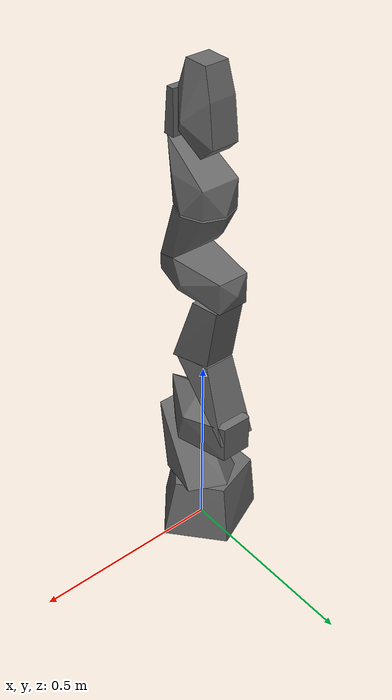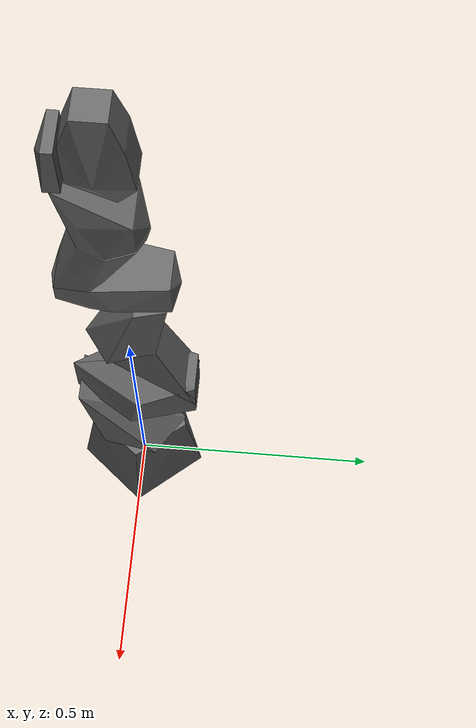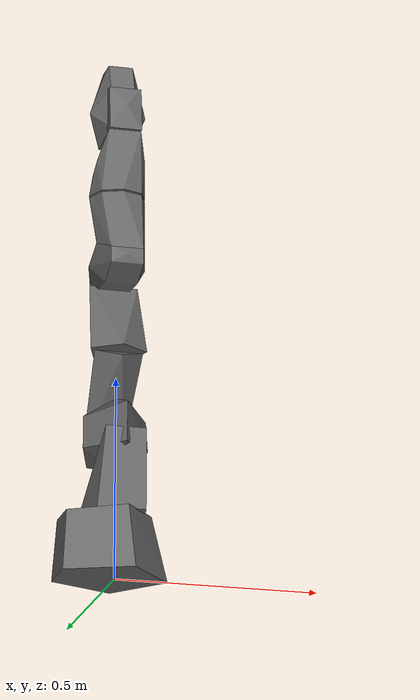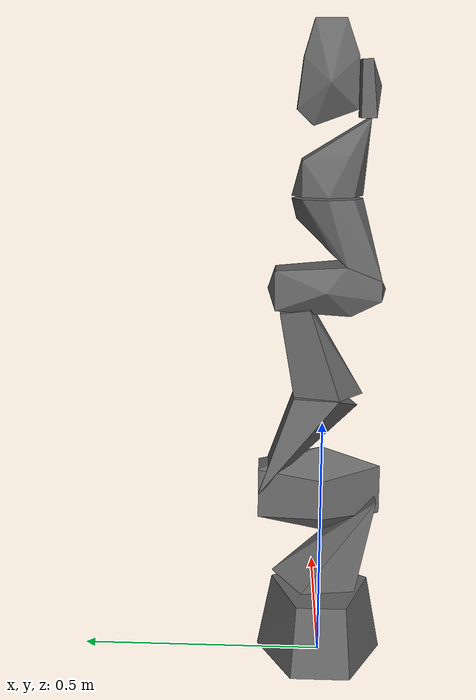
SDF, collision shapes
<?xml version="1.0"?>
<sdf version="1.7">
  <model name="iiwa14">
    <link name="iiwa_link_0">
      <inertial>
        <pose>-0.1 0 0.07 0 0 0</pose>
        <mass>5</mass>
        <inertia>
          <ixx>0.05</ixx>
          <ixy>0</ixy>
          <ixz>0</ixz>
          <iyy>0.06</iyy>
          <iyz>0</iyz>
          <izz>0.03</izz>
        </inertia>
      </inertial>
      <visual name="iiwa_link_0_fixed_joint_lump__iiwa_link_0_visual">
        <geometry>
          <mesh>
            <scale>1 1 1</scale>
            <uri>package://drake/manipulation/models/iiwa_description/meshes/visual/link_0.obj</uri>
          </mesh>
        </geometry>
        <material>
          <diffuse>0.4 0.4 0.4 1.0</diffuse>
        </material>
      </visual>
      <collision name="link_0_coarse">
        <geometry>
          <mesh>
            <drake:declare_convex/>
            <scale> 1 1 1</scale>
            <uri>package://drake/manipulation/models/iiwa_description/meshes/collision/link_0_coarse.obj</uri>
          </mesh>
        </geometry>
      </collision>
      <gravity>1</gravity>
      <velocity_decay/>
      <self_collide>0</self_collide>
    </link>
    <link name="iiwa_link_1">
      <pose relative_to="iiwa_joint_1"/>
      <inertial>
        <pose>0 -0.03 0.12 0 0 0</pose>
        <mass>5.76</mass>
        <inertia>
          <ixx>0.033</ixx>
          <ixy>0</ixy>
          <ixz>0</ixz>
          <iyy>0.0333</iyy>
          <iyz>0</iyz>
          <izz>0.0123</izz>
        </inertia>
      </inertial>
      <visual name="iiwa_link_1_visual">
        <geometry>
          <mesh>
            <scale>1 1 1</scale>
            <uri>package://drake/manipulation/models/iiwa_description/meshes/visual/link_1.obj</uri>
          </mesh>
        </geometry>
        <material>
          <diffuse>0.4 0.4 0.4 1.0</diffuse>
        </material>
      </visual>
      <collision name="link_1_coarse">
        <geometry>
          <mesh>
            <drake:declare_convex/>
            <scale> 1 1 1</scale>
            <uri>package://drake/manipulation/models/iiwa_description/meshes/collision/link_1_coarse.obj</uri>
          </mesh>
        </geometry>
      </collision>
      <gravity>1</gravity>
      <velocity_decay/>
      <self_collide>0</self_collide>
    </link>
    <joint name="iiwa_joint_1" type="revolute">
      <pose relative_to="iiwa_link_0">0 0 0.1575 0 0 0</pose>
      <child>iiwa_link_1</child>
      <parent>iiwa_link_0</parent>
      <axis>
        <xyz>0 0 1</xyz>
        <limit>
          <lower>-2.96705972839</lower>
          <upper>2.96705972839</upper>
          <effort>320</effort>
          <velocity>1.4835298641951802</velocity>
          <drake:acceleration>8.57</drake:acceleration>
        </limit>
        <dynamics>
          <damping>0.0</damping>
          <friction>0</friction>
          <spring_reference>0</spring_reference>
          <spring_stiffness>0</spring_stiffness>
        </dynamics>
      </axis>
    </joint>
    <link name="iiwa_link_2">
      <pose relative_to="iiwa_joint_2"/>
      <inertial>
        <pose>0.0003 0.059 0.042 0 0 0</pose>
        <mass>6.35</mass>
        <inertia>
          <ixx>0.0305</ixx>
          <ixy>0</ixy>
          <ixz>0</ixz>
          <iyy>0.0304</iyy>
          <iyz>0</iyz>
          <izz>0.011</izz>
        </inertia>
      </inertial>
      <visual name="iiwa_link_2_visual_grey">
        <geometry>
          <mesh>
            <scale>1 1 1</scale>
            <uri>package://drake/manipulation/models/iiwa_description/meshes/visual/link_2_grey.obj</uri>
          </mesh>
        </geometry>
        <material>
          <diffuse>0.4 0.4 0.4 1.0</diffuse>
        </material>
      </visual>
      <visual name="iiwa_link_2_visual_orange">
        <geometry>
          <mesh>
            <scale>1 1 1</scale>
            <uri>package://drake/manipulation/models/iiwa_description/meshes/visual/link_2_orange.obj</uri>
          </mesh>
        </geometry>
        <material>
          <diffuse>1.0 0.423529411765 0.0392156862745 1.0</diffuse>
        </material>
      </visual>
      <collision name="link_2_coarse1">
        <geometry>
          <mesh>
            <drake:declare_convex/>
            <scale> 1 1 1</scale>
            <uri>package://drake/manipulation/models/iiwa_description/meshes/collision/link_2_coarse1.obj</uri>
          </mesh>
        </geometry>
      </collision>
      <collision name="link_2_coarse2">
        <geometry>
          <mesh>
            <drake:declare_convex/>
            <scale> 1 1 1</scale>
            <uri>package://drake/manipulation/models/iiwa_description/meshes/collision/link_2_coarse2.obj</uri>
          </mesh>
        </geometry>
      </collision>
      <gravity>1</gravity>
      <velocity_decay/>
      <self_collide>0</self_collide>
    </link>
    <joint name="iiwa_joint_2" type="revolute">
      <pose relative_to="iiwa_link_1">
        0 0 0.2025 1.570796326794897 0 3.141592653589793
      </pose>
      <child>iiwa_link_2</child>
      <parent>iiwa_link_1</parent>
      <axis>
        <xyz>0 0 1</xyz>
        <limit>
          <lower>-2.09439510239</lower>
          <upper>2.09439510239</upper>
          <effort>320</effort>
          <velocity>1.4835298641951802</velocity>
          <drake:acceleration>8.57</drake:acceleration>
        </limit>
        <dynamics>
          <damping>0.0</damping>
          <friction>0</friction>
          <spring_reference>0</spring_reference>
          <spring_stiffness>0</spring_stiffness>
        </dynamics>
      </axis>
    </joint>
    <link name="iiwa_link_3">
      <pose relative_to="iiwa_joint_3"/>
      <inertial>
        <pose>0 0.03 0.13 0 0 0</pose>
        <mass>3.5</mass>
        <inertia>
          <ixx>0.025</ixx>
          <ixy>0</ixy>
          <ixz>0</ixz>
          <iyy>0.0238</iyy>
          <iyz>0</iyz>
          <izz>0.0076</izz>
        </inertia>
      </inertial>
      <visual name="iiwa_link_3_visual">
        <geometry>
          <mesh>
            <scale>1 1 1</scale>
            <uri>package://drake/manipulation/models/iiwa_description/meshes/visual/link_3.obj</uri>
          </mesh>
        </geometry>
        <material>
          <diffuse>0.4 0.4 0.4 1.0</diffuse>
        </material>
      </visual>
      <visual name="iiwa_link_3_visual_band">
        <geometry>
          <mesh>
            <scale>1 1 1</scale>
            <uri>package://drake/manipulation/models/iiwa_description/meshes/visual/band.obj</uri>
          </mesh>
        </geometry>
        <material>
          <diffuse>0.6 0.6 0.6 1.0</diffuse>
        </material>
      </visual>
      <visual name="iiwa_link_3_visual_kuka">
        <geometry>
          <mesh>
            <scale>1 1 1</scale>
            <uri>package://drake/manipulation/models/iiwa_description/meshes/visual/kuka.obj</uri>
          </mesh>
        </geometry>
        <material>
          <diffuse>0 0 0 1</diffuse>
        </material>
      </visual>
      <collision name="link_3_coarse">
        <geometry>
          <mesh>
            <drake:declare_convex/>
            <scale>1 1 1</scale>
            <uri>package://drake/manipulation/models/iiwa_description/meshes/collision/link_3_coarse.obj</uri>
          </mesh>
        </geometry>
      </collision>
      <gravity>1</gravity>
      <velocity_decay/>
      <self_collide>0</self_collide>
    </link>
    <joint name="iiwa_joint_3" type="revolute">
      <pose relative_to="iiwa_link_2">0 0.2045 0 1.570796326794897 0 3.141592653589793</pose>
      <child>iiwa_link_3</child>
      <parent>iiwa_link_2</parent>
      <axis>
        <xyz>0 0 1</xyz>
        <limit>
          <lower>-2.96705972839</lower>
          <upper>2.96705972839</upper>
          <effort>176</effort>
          <velocity>1.7453292519943295</velocity>
          <drake:acceleration>8.74</drake:acceleration>
        </limit>
        <dynamics>
          <damping>0.0</damping>
          <friction>0</friction>
          <spring_reference>0</spring_reference>
          <spring_stiffness>0</spring_stiffness>
        </dynamics>
      </axis>
    </joint>
    <link name="iiwa_link_4">
      <pose relative_to="iiwa_joint_4"/>
      <inertial>
        <pose>0 0.067 0.034 0 0 0</pose>
        <mass>3.5</mass>
        <inertia>
          <ixx>0.017</ixx>
          <ixy>0</ixy>
          <ixz>0</ixz>
          <iyy>0.0164</iyy>
          <iyz>0</iyz>
          <izz>0.006</izz>
        </inertia>
      </inertial>
      <collision name="iiwa_link_4_collision1">
        <geometry>
          <mesh>
            <drake:declare_convex/>
            <scale>1 1 1</scale>
            <uri>package://drake/manipulation/models/iiwa_description/meshes/collision/link_4_coarse1.obj</uri>
          </mesh>
        </geometry>
        <surface>
          <contact>
            <ode/>
          </contact>
          <friction>
            <ode>
              <mu>0.2</mu>
              <mu2>0.2</mu2>
            </ode>
          </friction>
        </surface>
      </collision>
      <collision name="iiwa_link_4_collision2">
        <geometry>
          <mesh>
            <drake:declare_convex/>
            <scale>1 1 1</scale>
            <uri>package://drake/manipulation/models/iiwa_description/meshes/collision/link_4_coarse2.obj</uri>
          </mesh>
        </geometry>
        <surface>
          <contact>
            <ode/>
          </contact>
          <friction>
            <ode>
              <mu>0.2</mu>
              <mu2>0.2</mu2>
            </ode>
          </friction>
        </surface>
      </collision>
      <visual name="iiwa_link_4_visual_grey">
        <geometry>
          <mesh>
            <scale>1 1 1</scale>
            <uri>package://drake/manipulation/models/iiwa_description/meshes/visual/link_4_grey.obj</uri>
          </mesh>
        </geometry>
        <material>
          <diffuse>0.4 0.4 0.4 1.0</diffuse>
        </material>
      </visual>
      <visual name="iiwa_link_4_visual_orange">
        <geometry>
          <mesh>
            <scale>1 1 1</scale>
            <uri>package://drake/manipulation/models/iiwa_description/meshes/visual/link_4_orange.obj</uri>
          </mesh>
        </geometry>
        <material>
          <diffuse>1.0 0.423529411765 0.0392156862745 1.0</diffuse>
        </material>
      </visual>
      <gravity>1</gravity>
      <velocity_decay/>
      <self_collide>0</self_collide>
    </link>
    <joint name="iiwa_joint_4" type="revolute">
      <pose relative_to="iiwa_link_3">0 0 0.2155 1.570796326794897 0 0</pose>
      <child>iiwa_link_4</child>
      <parent>iiwa_link_3</parent>
      <axis>
        <xyz>0 0 1</xyz>
        <limit>
          <lower>-2.09439510239</lower>
          <upper>2.09439510239</upper>
          <effort>176</effort>
          <velocity>1.3089969389957472</velocity>
          <drake:acceleration>11.36</drake:acceleration>
        </limit>
        <dynamics>
          <damping>0.0</damping>
          <friction>0</friction>
          <spring_reference>0</spring_reference>
          <spring_stiffness>0</spring_stiffness>
        </dynamics>
      </axis>
    </joint>
    <link name="iiwa_link_5">
      <pose relative_to="iiwa_joint_5"/>
      <inertial>
        <pose>0.0001 0.021 0.076 0 0 0</pose>
        <mass>3.5</mass>
        <inertia>
          <ixx>0.01</ixx>
          <ixy>0</ixy>
          <ixz>0</ixz>
          <iyy>0.0087</iyy>
          <iyz>0</iyz>
          <izz>0.00449</izz>
        </inertia>
      </inertial>
      <collision name="iiwa_link_5_collision1">
        <geometry>
          <mesh>
            <drake:declare_convex/>
            <scale>1 1 1</scale>
            <uri>package://drake/manipulation/models/iiwa_description/meshes/collision/link_5_coarse1.obj</uri>
          </mesh>
        </geometry>
        <surface>
          <contact>
            <ode/>
          </contact>
          <friction>
            <ode>
              <mu>0.2</mu>
              <mu2>0.2</mu2>
            </ode>
          </friction>
        </surface>
      </collision>
      <collision name="iiwa_link_5_collision2">
        <geometry>
          <mesh>
            <drake:declare_convex/>
            <scale>1 1 1</scale>
            <uri>package://drake/manipulation/models/iiwa_description/meshes/collision/link_5_coarse2.obj</uri>
          </mesh>
        </geometry>
        <surface>
          <contact>
            <ode/>
          </contact>
          <friction>
            <ode>
              <mu>0.2</mu>
              <mu2>0.2</mu2>
            </ode>
          </friction>
        </surface>
      </collision>
      <visual name="iiwa_link_5_visual">
        <geometry>
          <mesh>
            <scale>1 1 1</scale>
            <uri>package://drake/manipulation/models/iiwa_description/meshes/visual/link_5.obj</uri>
          </mesh>
        </geometry>
        <material>
          <diffuse>0.4 0.4 0.4 1.0</diffuse>
        </material>
      </visual>
      <visual name="iiwa_link_5_visual_band">
        <geometry>
          <mesh>
            <scale>1 1 1</scale>
            <uri>package://drake/manipulation/models/iiwa_description/meshes/visual/band.obj</uri>
          </mesh>
        </geometry>
        <material>
          <diffuse>0.6 0.6 0.6 1.0</diffuse>
        </material>
      </visual>
      <visual name="iiwa_link_5_visual_kuka">
        <geometry>
          <mesh>
            <scale>1 1 1</scale>
            <uri>package://drake/manipulation/models/iiwa_description/meshes/visual/kuka.obj</uri>
          </mesh>
        </geometry>
        <material>
          <diffuse>0 0 0 1</diffuse>
        </material>
      </visual>
      <gravity>1</gravity>
      <velocity_decay/>
      <self_collide>0</self_collide>
    </link>
    <joint name="iiwa_joint_5" type="revolute">
      <pose relative_to="iiwa_link_4">0 0.1845 0 -1.570796326794897 3.141592653589793 0</pose>
      <child>iiwa_link_5</child>
      <parent>iiwa_link_4</parent>
      <axis>
        <xyz>0 0 1</xyz>
        <limit>
          <lower>-2.96705972839</lower>
          <upper>2.96705972839</upper>
          <effort>110</effort>
          <velocity>2.2689280275926285</velocity>
          <drake:acceleration>12.23</drake:acceleration>
        </limit>
        <dynamics>
          <damping>0.0</damping>
          <friction>0</friction>
          <spring_reference>0</spring_reference>
          <spring_stiffness>0</spring_stiffness>
        </dynamics>
      </axis>
    </joint>
    <link name="iiwa_link_6">
      <pose relative_to="iiwa_joint_6"/>
      <inertial>
        <pose>0 0.0006 0.0004 0 0 0</pose>
        <mass>1.8</mass>
        <inertia>
          <ixx>0.0049</ixx>
          <ixy>0</ixy>
          <ixz>0</ixz>
          <iyy>0.0047</iyy>
          <iyz>0</iyz>
          <izz>0.0036</izz>
        </inertia>
      </inertial>
      <collision name="iiwa_link_6_collision">
        <geometry>
          <mesh>
            <drake:declare_convex/>
            <scale>1 1 1</scale>
            <uri>package://drake/manipulation/models/iiwa_description/meshes/collision/link_6_coarse.obj</uri>
          </mesh>
        </geometry>
        <surface>
          <contact>
            <ode/>
          </contact>
          <friction>
            <ode>
              <mu>0.2</mu>
              <mu2>0.2</mu2>
            </ode>
          </friction>
        </surface>
      </collision>
      <visual name="iiwa_link_6_visual_grey">
        <geometry>
          <mesh>
            <scale>1 1 1</scale>
            <uri>package://drake/manipulation/models/iiwa_description/meshes/visual/link_6_grey.obj</uri>
          </mesh>
        </geometry>
        <material>
          <diffuse>0.4 0.4 0.4 1.0</diffuse>
        </material>
      </visual>
      <visual name="iiwa_link_6_visual_orange">
        <geometry>
          <mesh>
            <scale>1 1 1</scale>
            <uri>package://drake/manipulation/models/iiwa_description/meshes/visual/link_6_orange.obj</uri>
          </mesh>
        </geometry>
        <material>
          <diffuse>1.0 0.423529411765 0.0392156862745 1.0</diffuse>
        </material>
      </visual>
      <gravity>1</gravity>
      <velocity_decay/>
      <self_collide>0</self_collide>
    </link>
    <joint name="iiwa_joint_6" type="revolute">
      <pose relative_to="iiwa_link_5">0 0 0.2155 1.570796326794897 0 0</pose>
      <child>iiwa_link_6</child>
      <parent>iiwa_link_5</parent>
      <axis>
        <xyz>0 0 1</xyz>
        <limit>
          <lower>-2.09439510239</lower>
          <upper>2.09439510239</upper>
          <effort>40</effort>
          <velocity>2.356194490192345</velocity>
          <drake:acceleration>15.72</drake:acceleration>
        </limit>
        <dynamics>
          <damping>0.0</damping>
          <friction>0</friction>
          <spring_reference>0</spring_reference>
          <spring_stiffness>0</spring_stiffness>
        </dynamics>
      </axis>
    </joint>
    <link name="iiwa_link_7">
      <pose relative_to="iiwa_joint_7"/>
      <inertial>
        <pose>0 0 0.02 0 0 0</pose>
        <mass>1.2</mass>
        <inertia>
          <ixx>0.001</ixx>
          <ixy>0</ixy>
          <ixz>0</ixz>
          <iyy>0.001</iyy>
          <iyz>0</iyz>
          <izz>0.001</izz>
        </inertia>
      </inertial>
      <visual name="iiwa_link_7_visual">
        <geometry>
          <mesh>
            <scale>1 1 1</scale>
            <uri>package://drake/manipulation/models/iiwa_description/meshes/visual/link_7.obj</uri>
          </mesh>
        </geometry>
        <material>
          <diffuse>0.4 0.4 0.4 1.0</diffuse>
        </material>
      </visual>
      <gravity>1</gravity>
      <velocity_decay/>
      <self_collide>0</self_collide>
    </link>
    <joint name="iiwa_joint_7" type="revolute">
      <pose relative_to="iiwa_link_6">
        0 0.081 0 -1.570796326794897 3.141592653589793 0
      </pose>
      <child>iiwa_link_7</child>
      <parent>iiwa_link_6</parent>
      <axis>
        <xyz>0 0 1</xyz>
        <limit>
          <lower>-3.05432619099</lower>
          <upper>3.05432619099</upper>
          <effort>40</effort>
          <velocity>2.356194490192345</velocity>
          <drake:acceleration>15.72</drake:acceleration>
        </limit>
        <dynamics>
          <damping>0.0</damping>
          <friction>0</friction>
          <spring_reference>0</spring_reference>
          <spring_stiffness>0</spring_stiffness>
        </dynamics>
      </axis>
    </joint>
    <static>0</static>
    <plugin name="gazebo_ros_controller" filename="libgazebo_ros_control.so">
      <robotNamespace>/iiwa</robotNamespace>
    </plugin>
  </model>
</sdf>
